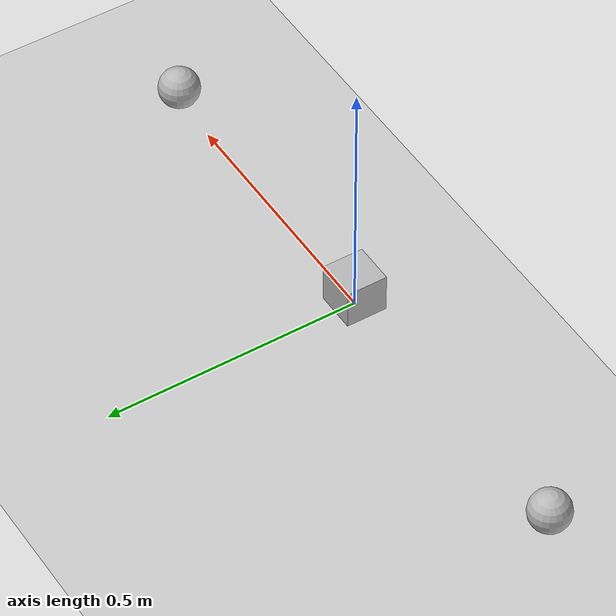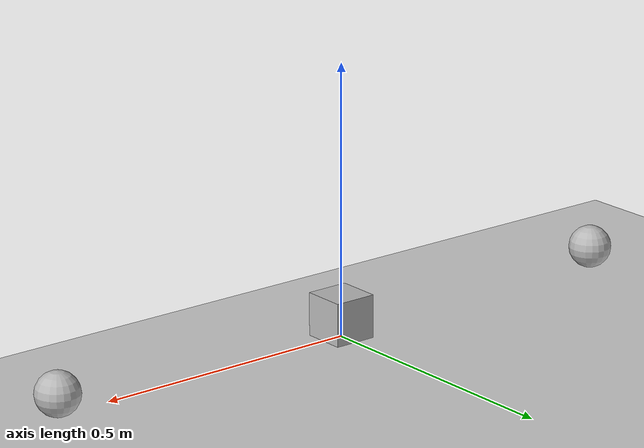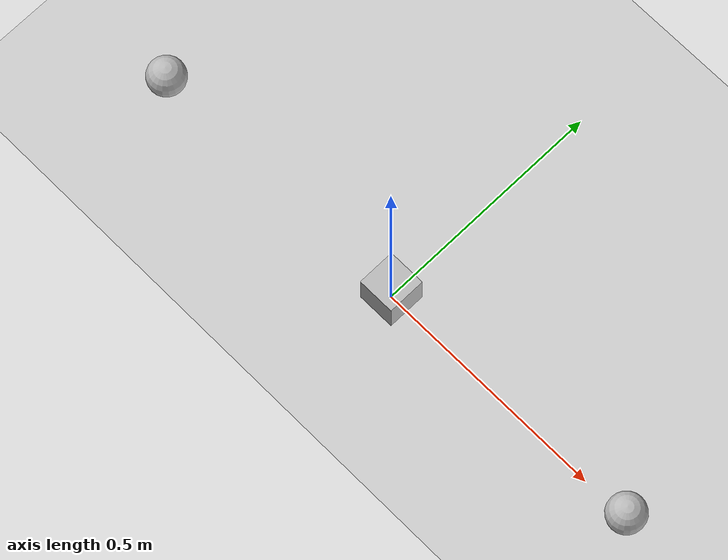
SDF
<?xml version="1.0"?>
<sdf version="1.6">
  <world name="default">

    <include>
      <uri>model://ground_plane</uri>
    </include>

    <model name='box'>
      <pose>0 0 0.04 0 0 0</pose>
      <link name="link">
        <collision name="collision">
          <geometry>
            <box>
              <size>0.08 0.08 0.08</size>
            </box>
          </geometry>
        </collision>
        <visual name="visual">
          <geometry>
            <box>
              <size>0.08 0.08 0.08</size>
            </box>
          </geometry>
        </visual>
      </link>

      <plugin name='vacuum_gripper' filename='libgazebo_ros_vacuum_gripper.so'>

        <ros>
          <namespace>/test</namespace>
          <remapping>switch:=switch_test</remapping>
          <remapping>grasping:=grasping_test</remapping>
        </ros>

        <link_name>link</link_name>

        <max_distance>5.0</max_distance>

        <fixed>ground_plane</fixed>

      </plugin>
    </model>

    <model name='ball1'>
      <pose>0.6 0 0.04 0 0 0</pose>
      <link name="link1">
        <inertial>
          <mass>0.026</mass>
          <inertia>
            <ixx>1.664e-5</ixx>
            <iyy>1.664e-5</iyy>
            <izz>1.664e-5</izz>
            <ixy>0</ixy>
            <ixz>0</ixz>
            <iyz>0</iyz>
          </inertia>
        </inertial>
        <collision name="collision">
          <geometry>
            <sphere>
              <radius>0.04</radius>
            </sphere>
          </geometry>
        </collision>
        <visual name="visual">
          <geometry>
            <sphere>
              <radius>0.04</radius>
            </sphere>
          </geometry>
        </visual>
      </link>
    </model>

    <model name='ball2'>
      <pose>-0.6 0 0.04 0 0 0</pose>
      <link name="link2">
        <inertial>
          <mass>0.026</mass>
          <inertia>
            <ixx>1.664e-5</ixx>
            <iyy>1.664e-5</iyy>
            <izz>1.664e-5</izz>
            <ixy>0</ixy>
            <ixz>0</ixz>
            <iyz>0</iyz>
          </inertia>
        </inertial>
        <collision name="collision">
          <geometry>
            <sphere>
              <radius>0.04</radius>
            </sphere>
          </geometry>
        </collision>
        <visual name="visual">
          <geometry>
            <sphere>
              <radius>0.04</radius>
            </sphere>
          </geometry>
        </visual>
      </link>
    </model>

  </world>
</sdf>
